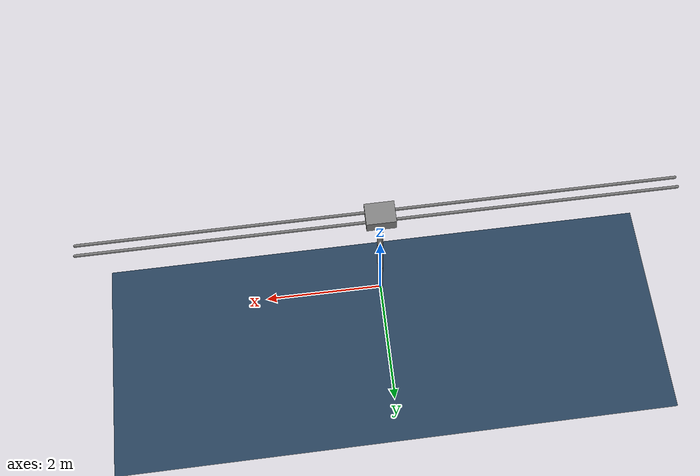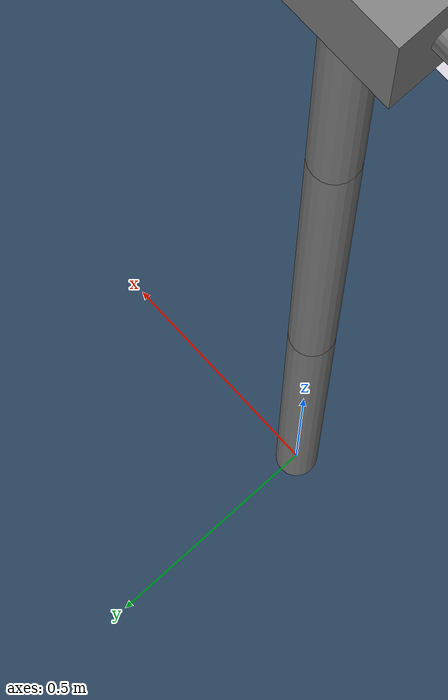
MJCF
<!-- Triple Cartpole Model, Credit: https://github.com/vincekurtz/hydrax -->
<mujoco model="triplecartpole">
  <option integrator="implicitfast" timestep="0.01" iterations="1" ls_iterations="5">
    <flag contact="disable"/>
  </option>

  <statistic center="0 0 3" extent="8"/>

  <visual>
    <headlight diffuse="0.6 0.6 0.6" ambient="0.3 0.3 0.3" specular="0 0 0"/>
    <rgba haze="0.15 0.25 0.35 1"/>
    <global elevation="0"/>
  </visual>

  <default>
    <default class="pole">
      <joint type="hinge" axis="0 1 0" damping="1e-2"/>
      <geom type="capsule" fromto="0 0 -1 0 0 0" size="0.045" mass=".1"/>
    </default>
  </default>

  <asset>
    <texture type="skybox" builtin="gradient" rgb1="0.3 0.5 0.7" rgb2="0 0 0" width="512" height="3072"/>
    <texture type="2d" name="groundplane" builtin="checker" mark="edge" rgb1="0.2 0.3 0.4" rgb2="0.1 0.2 0.3"
      markrgb="0.8 0.8 0.8" width="300" height="300"/>
    <material name="groundplane" texture="groundplane" texuniform="true" texrepeat="5 5" reflectance="0.2"/>
  </asset>

  <worldbody>
    <light pos="0 0 6" dir="0 0 -1" directional="false"/>
    <geom name="floor" pos="0 0 -0.05" size="0 0 .125" type="plane" material="groundplane" conaffinity="15" condim="3"/>
    <camera name="fixed" pos="0 -10 3" zaxis="0 -1 0"/>
    <camera name="lookatcart" mode="targetbody" target="cart" pos="0 -2 3"/>
    <geom name="rail1" type="capsule" pos="0  .07 3" zaxis="1 0 0" size="0.02 4"/>
    <geom name="rail2" type="capsule" pos="0 -.07 3" zaxis="1 0 0" size="0.02 4"/>
    <body name="cart" pos="0 0 3">
      <joint name="slider" type="slide" limited="false" axis="1 0 0" damping="1.0e-4"/>
      <geom name="cart" type="box" size="0.2 0.15 0.1" mass="1"/>
      <body name="pole_1" childclass="pole">
        <joint name="hinge_1"/>
        <geom name="pole_1"/>
        <body name="pole_2" childclass="pole" pos="0 0 -1">
          <joint name="hinge_2"/>
          <geom name="pole_2"/>
          <body name="pole_3" childclass="pole" pos="0 0 -1">
            <joint name="hinge_3"/>
            <geom name="pole_3"/>
            <site name="tip" pos="0 0 -1"/>
          </body>
        </body>
      </body>
    </body>
  </worldbody>

  <actuator>
    <motor name="slide" joint="slider" ctrllimited="false" />
  </actuator>
</mujoco>
